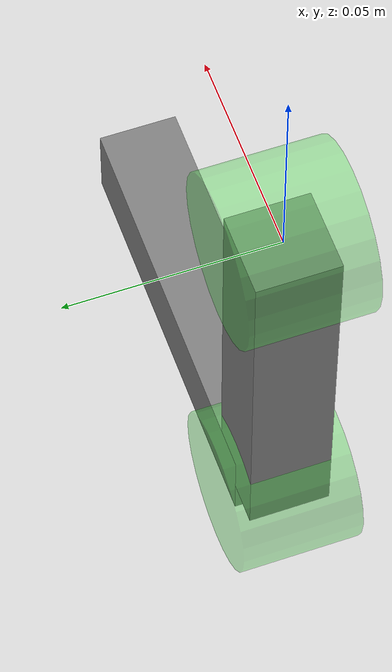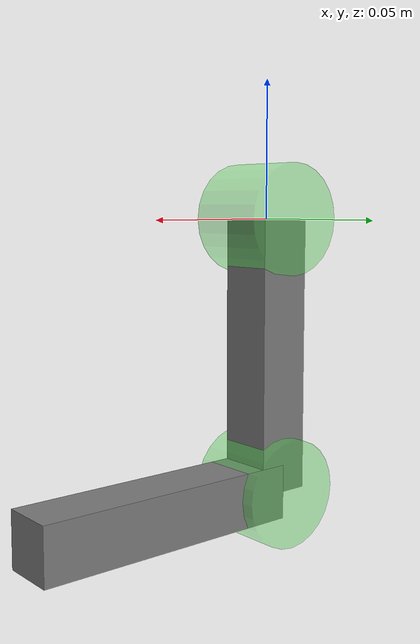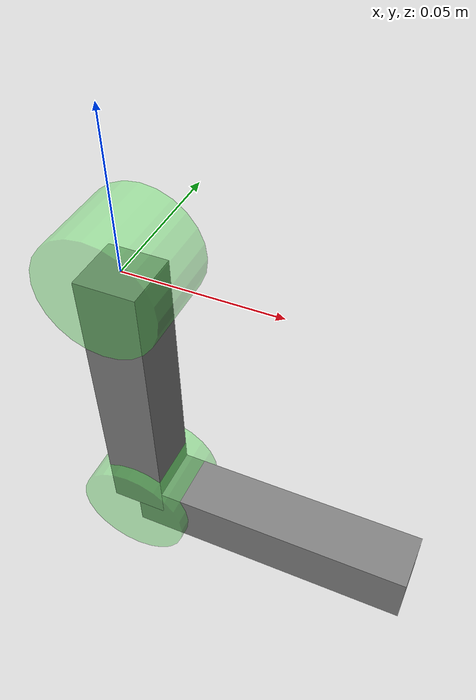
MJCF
<mujoco model="double_pendulum">
  <compiler angle="radian"/>

  <worldbody>
    <light pos="0 0 1" dir="0 0 -1"/>
    <body name="link_1">
      <joint name="joint_1" pos="0 0 0" axis="0 1 0"/>
      <geom size="0.02 0.015" euler="1.57 0 0" conaffinity="0" contype="0" type="cylinder" rgba="0.3 0.9 0.3 0.4" density="0"/>
      <geom size="0.01 0.01 0.05" pos="0 0 -0.05" type="box" mass="1"/>
      <body name="link_2" pos="0 0 -0.1">
        <joint name="joint_2" pos="0 0 0" axis="0 1 0"/>
        <geom size="0.02 0.015" euler="1.57 0 0" conaffinity="0" contype="0" type="cylinder" rgba="0.3 0.9 0.3 0.4" density="0"/>
        <geom size="0.01 0.01 0.05" pos="0.05 0 0" quat="0.707107 0 -0.707107 0" type="box" mass="1"/>
      </body>
    </body>
  </worldbody>
</mujoco>
